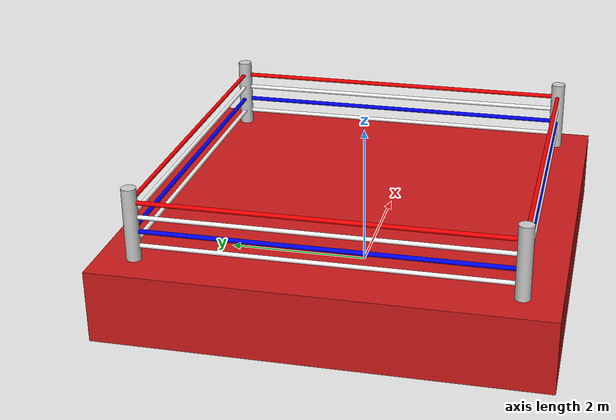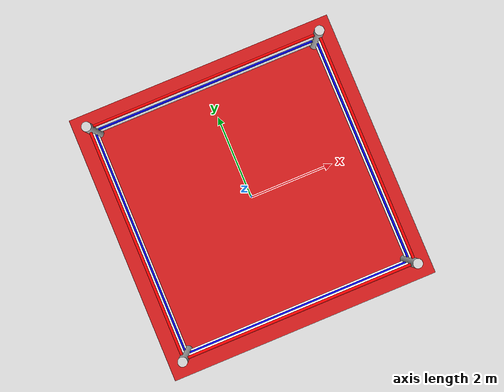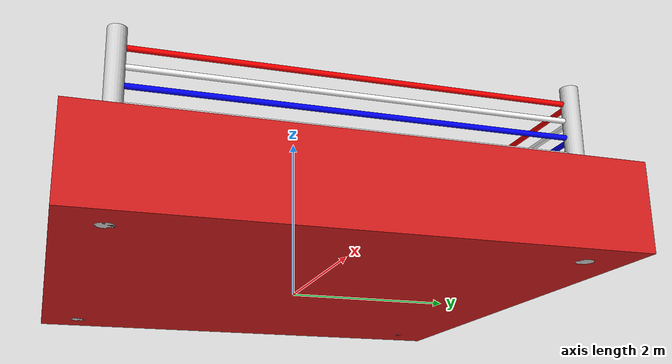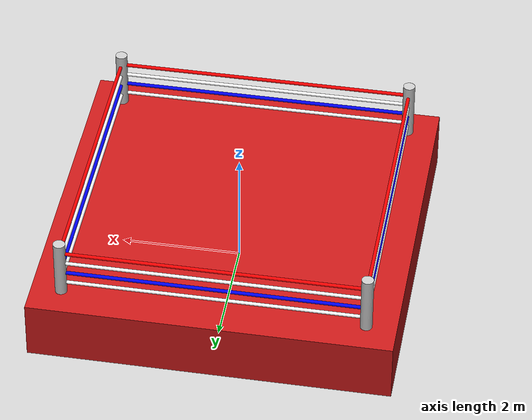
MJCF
<mujoco model="Ring">
  <option timestep="0.005"/>

  <include file="../common/skybox.xml"/>

  <visual>
    <global offwidth="2560" offheight="1440" elevation="-20" azimuth="120"/>
  </visual>

  <worldbody>
    <geom name="platform" type="box" size="3 3 0.5" pos="0 0 0.5" rgba="0.8 0.1 0.1 1" condim="3"/>

    <!-- Boxing Ropes and Posts -->
    <!-- Corner Posts -->
    <geom name="post1" type="cylinder" size="0.1 1.0" pos="-2.5 -2.5 1.0" rgba="0.8 0.8 0.8 1"/>
    <geom name="post2" type="cylinder" size="0.1 1.0" pos="2.5 -2.5 1.0" rgba="0.8 0.8 0.8 1"/>
    <geom name="post3" type="cylinder" size="0.1 1.0" pos="-2.5 2.5 1.0" rgba="0.8 0.8 0.8 1"/>
    <geom name="post4" type="cylinder" size="0.1 1.0" pos="2.5 2.5 1.0" rgba="0.8 0.8 0.8 1"/>

    <!-- Bottom Rope -->
    <geom name="rope_bottom_1" type="cylinder" size="0.03 2.5" pos="0 -2.5 1.2" euler="0 90 0" rgba="1 1 1 1"/>
    <geom name="rope_bottom_2" type="cylinder" size="0.03 2.5" pos="0 2.5 1.2" euler="0 90 0" rgba="1 1 1 1"/>
    <geom name="rope_bottom_3" type="cylinder" size="0.03 2.5" pos="-2.5 0 1.2" euler="90 180 0" rgba="1 1 1 1"/>
    <geom name="rope_bottom_4" type="cylinder" size="0.03 2.5" pos="2.5 0 1.2" euler="90 180 0" rgba="1 1 1 1"/>

    <!-- Middle Rope 1-->
    <geom name="rope_middle_1_1" type="cylinder" size="0.03 2.5" pos="0 -2.5 1.4" euler="0 90 0" rgba="0 0 1 1"/>
    <geom name="rope_middle_1_2" type="cylinder" size="0.03 2.5" pos="0 2.5 1.4" euler="0 90 0" rgba="0 0 1 1"/>
    <geom name="rope_middle_1_3" type="cylinder" size="0.03 2.5" pos="-2.5 0 1.4" euler="90 180 0" rgba="0 0 1 1"/>
    <geom name="rope_middle_1_4" type="cylinder" size="0.03 2.5" pos="2.5 0 1.4" euler="90 180 0" rgba="0 0 1 1"/>

    <!-- Middle Rope 2 -->
    <geom name="rope_middle_2_1" type="cylinder" size="0.03 2.5" pos="0 -2.5 1.6" euler="0 90 0" rgba="1 1 1 1"/>
    <geom name="rope_middle_2_2" type="cylinder" size="0.03 2.5" pos="0 2.5 1.6" euler="0 90 0" rgba="1 1 1 1"/>
    <geom name="rope_middle_2_3" type="cylinder" size="0.03 2.5" pos="-2.5 0 1.6" euler="90 180 0" rgba="1 1 1 1"/>
    <geom name="rope_middle_2_4" type="cylinder" size="0.03 2.5" pos="2.5 0 1.6" euler="90 180 0" rgba="1 1 1 1"/>

    <!-- Top Rope -->
    <geom name="rope_top_1" type="cylinder" size="0.03 2.5" pos="0 -2.5 1.8" euler="0 90 0" rgba="1 0 0 1"/>
    <geom name="rope_top_2" type="cylinder" size="0.03 2.5" pos="0 2.5 1.8" euler="0 90 0" rgba="1 0 0 1"/>
    <geom name="rope_top_3" type="cylinder" size="0.03 2.5" pos="-2.5 0 1.8" euler="90 180 0" rgba="1 0 0 1"/>
    <geom name="rope_top_4" type="cylinder" size="0.03 2.5" pos="2.5 0 1.8" euler="90 180 0" rgba="1 0 0 1"/>

    <!-- Uniform Light Focused on Mat -->
    <light name="mat_light" diffuse="1.0 1.0 1.0" specular="0.2 0.2 0.2" pos="0 0 4" dir="0 0 -1" cutoff="180" exponent="1"/>
  </worldbody>
</mujoco>

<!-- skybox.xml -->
<mujoco>
  <asset>
      <texture name="skybox" type="skybox" builtin="gradient" rgb1=".4 .6 .8" rgb2="0 0 0"
               width="800" height="800" mark="random" markrgb="1 1 1"/>
      <material name="humanoid_color" rgba="0.8 0.5 0.6 1"/>
  </asset>
</mujoco>
